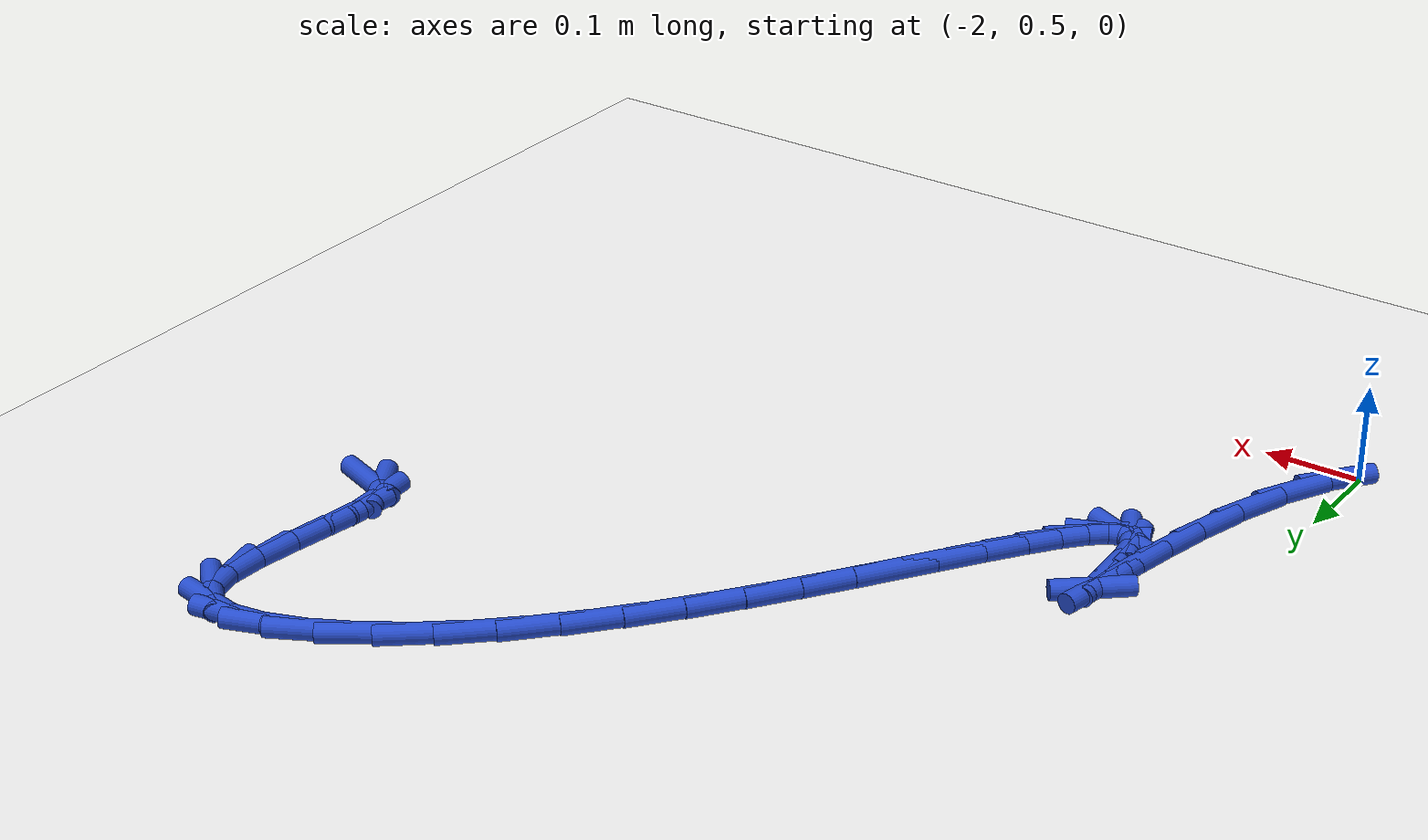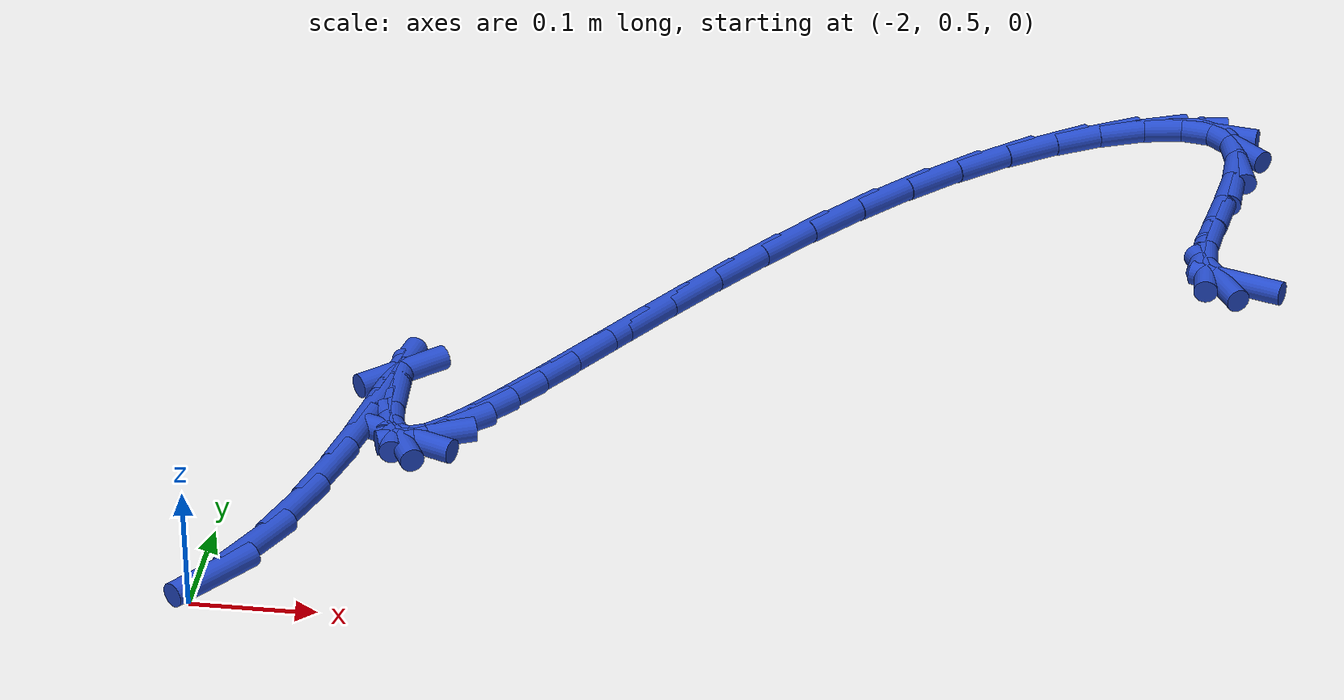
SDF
<sdf version="1.6">
 <world name="default">
  <model name="ground_plane">
   <static>1</static>
   <link name="link">
    <collision name="collision">
     <geometry><plane><normal>0 0 1</normal><size>100 100</size></plane></geometry>
     <surface><friction><ode><mu>100</mu><mu2>50</mu2></ode></friction></surface>
    </collision>
    <visual name="visual">
     <cast_shadows>0</cast_shadows>
     <geometry><plane><normal>0 0 1</normal><size>100 100</size></plane></geometry>
     <material>
      <script><uri>file://media/materials/scripts/gazebo.material</uri><name>Gazebo/WhiteGlow</name></script>
     </material>
    </visual>
   </link>
  </model>
  <model name="line">
   <link name="link_65">
    <pose>-1.2316347578829032 1.0549786805794126 0.01 0 1.57 -0.3231583201913348</pose>
    <collision name="collision">
     <geometry><cylinder><radius>0.01</radius><length>0.08</length></cylinder></geometry>
    </collision>
    <visual name="visual">
     <material>
      <script><name>Gazebo/Blue</name><uri>file://media/materials/scripts/gazebo.material</uri></script>
     </material>
     <geometry><cylinder><radius>0.01</radius><length>0.08</length></cylinder></geometry>
    </visual>
   </link>
   <link name="link_66">
    <pose>-1.2489816796954558 1.0607881343881533 0.01 0 1.57 -1.0448259775013014</pose>
    <collision name="collision">
     <geometry><cylinder><radius>0.01</radius><length>0.08</length></cylinder></geometry>
    </collision>
    <visual name="visual">
     <material>
      <script><name>Gazebo/Blue</name><uri>file://media/materials/scripts/gazebo.material</uri></script>
     </material>
     <geometry><cylinder><radius>0.01</radius><length>0.08</length></cylinder></geometry>
    </visual>
   </link>
   <link name="link_67">
    <pose>-1.258559127793637 1.0772862781112325 0.01 0 1.57 -1.5194724999171398</pose>
    <collision name="collision">
     <geometry><cylinder><radius>0.01</radius><length>0.08</length></cylinder></geometry>
    </collision>
    <visual name="visual">
     <material>
      <script><name>Gazebo/Blue</name><uri>file://media/materials/scripts/gazebo.material</uri></script>
     </material>
     <geometry><cylinder><radius>0.01</radius><length>0.08</length></cylinder></geometry>
    </visual>
   </link>
   <link name="link_68">
    <pose>-1.2599828690397379 1.1050022728854256 0.01 0 1.57 1.453924606464601</pose>
    <collision name="collision">
     <geometry><cylinder><radius>0.01</radius><length>0.08</length></cylinder></geometry>
    </collision>
    <visual name="visual">
     <material>
      <script><name>Gazebo/Blue</name><uri>file://media/materials/scripts/gazebo.material</uri></script>
     </material>
     <geometry><cylinder><radius>0.01</radius><length>0.08</length></cylinder></geometry>
    </visual>
   </link>
   <link name="link_69">
    <pose>-1.25577186941147 1.1408690288047874 0.01 0 1.57 1.4093247199140935</pose>
    <collision name="collision">
     <geometry><cylinder><radius>0.01</radius><length>0.08</length></cylinder></geometry>
    </collision>
    <visual name="visual">
     <material>
      <script><name>Gazebo/Blue</name><uri>file://media/materials/scripts/gazebo.material</uri></script>
     </material>
     <geometry><cylinder><radius>0.01</radius><length>0.08</length></cylinder></geometry>
    </visual>
   </link>
   <link name="link_70">
    <pose>-1.2492673810902013 1.1808008735307702 0.01 0 1.57 1.4349184412844749</pose>
    <collision name="collision">
     <geometry><cylinder><radius>0.01</radius><length>0.08</length></cylinder></geometry>
    </collision>
    <visual name="visual">
     <material>
      <script><name>Gazebo/Blue</name><uri>file://media/materials/scripts/gazebo.material</uri></script>
     </material>
     <geometry><cylinder><radius>0.01</radius><length>0.08</length></cylinder></geometry>
    </visual>
   </link>
   <link name="link_71">
    <pose>-1.2438107089595731 1.2207120694414633 0.01 0 1.57 1.5409893010086426</pose>
    <collision name="collision">
     <geometry><cylinder><radius>0.01</radius><length>0.08</length></cylinder></geometry>
    </collision>
    <visual name="visual">
     <material>
      <script><name>Gazebo/Blue</name><uri>file://media/materials/scripts/gazebo.material</uri></script>
     </material>
     <geometry><cylinder><radius>0.01</radius><length>0.08</length></cylinder></geometry>
    </visual>
   </link>
   <link name="link_72">
    <pose>-1.242743157903225 1.2565168789149554 0.01 0 1.57 -1.3340247727599028</pose>
    <collision name="collision">
     <geometry><cylinder><radius>0.01</radius><length>0.08</length></cylinder></geometry>
    </collision>
    <visual name="visual">
     <material>
      <script><name>Gazebo/Blue</name><uri>file://media/materials/scripts/gazebo.material</uri></script>
     </material>
     <geometry><cylinder><radius>0.01</radius><length>0.08</length></cylinder></geometry>
    </visual>
   </link>
   <link name="link_73">
    <pose>-1.2494060328047978 1.2841295643293358 0.01 0 1.57 -0.7539144972013343</pose>
    <collision name="collision">
     <geometry><cylinder><radius>0.01</radius><length>0.08</length></cylinder></geometry>
    </collision>
    <visual name="visual">
     <material>
      <script><name>Gazebo/Blue</name><uri>file://media/materials/scripts/gazebo.material</uri></script>
     </material>
     <geometry><cylinder><radius>0.01</radius><length>0.08</length></cylinder></geometry>
    </visual>
   </link>
   <link name="link_74">
    <pose>-1.266452386490176 1.3001349830888704 0.01 0 1.57 -0.16989779764663188</pose>
    <collision name="collision">
     <geometry><cylinder><radius>0.01</radius><length>0.08</length></cylinder></geometry>
    </collision>
    <visual name="visual">
     <material>
      <script><name>Gazebo/Blue</name><uri>file://media/materials/scripts/gazebo.material</uri></script>
     </material>
     <geometry><cylinder><radius>0.01</radius><length>0.08</length></cylinder></geometry>
    </visual>
   </link>
   <link name="link_75">
    <pose>-1.2928894302079432 1.304670300506552 0.01 0 1.57 0.16573971584571326</pose>
    <collision name="collision">
     <geometry><cylinder><radius>0.01</radius><length>0.08</length></cylinder></geometry>
    </collision>
    <visual name="visual">
     <material>
      <script><name>Gazebo/Blue</name><uri>file://media/materials/scripts/gazebo.material</uri></script>
     </material>
     <geometry><cylinder><radius>0.01</radius><length>0.08</length></cylinder></geometry>
    </visual>
   </link>
   <link name="link_76">
    <pose>-1.3265217155345135 1.299044487464639 0.01 0 1.57 0.3585549631792689</pose>
    <collision name="collision">
     <geometry><cylinder><radius>0.01</radius><length>0.08</length></cylinder></geometry>
    </collision>
    <visual name="visual">
     <material>
      <script><name>Gazebo/Blue</name><uri>file://media/materials/scripts/gazebo.material</uri></script>
     </material>
     <geometry><cylinder><radius>0.01</radius><length>0.08</length></cylinder></geometry>
    </visual>
   </link>
   <link name="link_77">
    <pose>-1.3651530477376101 1.2845672420076182 0.01 0 1.57 0.4884670050356795</pose>
    <collision name="collision">
     <geometry><cylinder><radius>0.01</radius><length>0.08</length></cylinder></geometry>
    </collision>
    <visual name="visual">
     <material>
      <script><name>Gazebo/Blue</name><uri>file://media/materials/scripts/gazebo.material</uri></script>
     </material>
     <geometry><cylinder><radius>0.01</radius><length>0.08</length></cylinder></geometry>
    </visual>
   </link>
   <link name="link_78">
    <pose>-1.4065872320849544 1.262548262179974 0.01 0 1.57 0.5916736825576479</pose>
    <collision name="collision">
     <geometry><cylinder><radius>0.01</radius><length>0.08</length></cylinder></geometry>
    </collision>
    <visual name="visual">
     <material>
      <script><name>Gazebo/Blue</name><uri>file://media/materials/scripts/gazebo.material</uri></script>
     </material>
     <geometry><cylinder><radius>0.01</radius><length>0.08</length></cylinder></geometry>
    </visual>
   </link>
   <link name="link_79">
    <pose>-1.4486287073273438 1.2342971320164955 0.01 0 1.57 0.6822285112587788</pose>
    <collision name="collision">
     <geometry><cylinder><radius>0.01</radius><length>0.08</length></cylinder></geometry>
    </collision>
    <visual name="visual">
     <material>
      <script><name>Gazebo/Blue</name><uri>file://media/materials/scripts/gazebo.material</uri></script>
     </material>
     <geometry><cylinder><radius>0.01</radius><length>0.08</length></cylinder></geometry>
    </visual>
   </link>
   <link name="link_80">
    <pose>-1.4895743051197081 1.2010348182428865 0.01 0 1.57 0.7565078281490967</pose>
    <collision name="collision">
     <geometry><cylinder><radius>0.01</radius><length>0.08</length></cylinder></geometry>
    </collision>
    <visual name="visual">
     <material>
      <script><name>Gazebo/Blue</name><uri>file://media/materials/scripts/gazebo.material</uri></script>
     </material>
     <geometry><cylinder><radius>0.01</radius><length>0.08</length></cylinder></geometry>
    </visual>
   </link>
   <link name="link_81">
    <pose>-1.5290938964789877 1.1637351779037266 0.01 0 1.57 0.816061124799054</pose>
    <collision name="collision">
     <geometry><cylinder><radius>0.01</radius><length>0.08</length></cylinder></geometry>
    </collision>
    <visual name="visual">
     <material>
      <script><name>Gazebo/Blue</name><uri>file://media/materials/scripts/gazebo.material</uri></script>
     </material>
     <geometry><cylinder><radius>0.01</radius><length>0.08</length></cylinder></geometry>
    </visual>
   </link>
   <link name="link_82">
    <pose>-1.5670948041985655 1.1233293331924448 0.01 0 1.57 0.863639317143502</pose>
    <collision name="collision">
     <geometry><cylinder><radius>0.01</radius><length>0.08</length></cylinder></geometry>
    </collision>
    <visual name="visual">
     <material>
      <script><name>Gazebo/Blue</name><uri>file://media/materials/scripts/gazebo.material</uri></script>
     </material>
     <geometry><cylinder><radius>0.01</radius><length>0.08</length></cylinder></geometry>
    </visual>
   </link>
   <link name="link_83">
    <pose>-1.6034843510718224 1.080748406302469 0.01 0 1.57 0.9012863477476284</pose>
    <collision name="collision">
     <geometry><cylinder><radius>0.01</radius><length>0.08</length></cylinder></geometry>
    </collision>
    <visual name="visual">
     <material>
      <script><name>Gazebo/Blue</name><uri>file://media/materials/scripts/gazebo.material</uri></script>
     </material>
     <geometry><cylinder><radius>0.01</radius><length>0.08</length></cylinder></geometry>
    </visual>
   </link>
   <link name="link_84">
    <pose>-1.638169859892142 1.0369235194272286 0.01 0 1.57 0.9304127438363866</pose>
    <collision name="collision">
     <geometry><cylinder><radius>0.01</radius><length>0.08</length></cylinder></geometry>
    </collision>
    <visual name="visual">
     <material>
      <script><name>Gazebo/Blue</name><uri>file://media/materials/scripts/gazebo.material</uri></script>
     </material>
     <geometry><cylinder><radius>0.01</radius><length>0.08</length></cylinder></geometry>
    </visual>
   </link>
   <link name="link_85">
    <pose>-1.671058653452905 0.9927857947601519 0.01 0 1.57 0.9518552612427992</pose>
    <collision name="collision">
     <geometry><cylinder><radius>0.01</radius><length>0.08</length></cylinder></geometry>
    </collision>
    <visual name="visual">
     <material>
      <script><name>Gazebo/Blue</name><uri>file://media/materials/scripts/gazebo.material</uri></script>
     </material>
     <geometry><cylinder><radius>0.01</radius><length>0.08</length></cylinder></geometry>
    </visual>
   </link>
   <link name="link_86">
    <pose>-1.702058054547495 0.9492663544946681 0.01 0 1.57 0.9658776120048262</pose>
    <collision name="collision">
     <geometry><cylinder><radius>0.01</radius><length>0.08</length></cylinder></geometry>
    </collision>
    <visual name="visual">
     <material>
      <script><name>Gazebo/Blue</name><uri>file://media/materials/scripts/gazebo.material</uri></script>
     </material>
     <geometry><cylinder><radius>0.01</radius><length>0.08</length></cylinder></geometry>
    </visual>
   </link>
   <link name="link_87">
    <pose>-1.731075385969294 0.9072963208242057 0.01 0 1.57 0.9720676805861276</pose>
    <collision name="collision">
     <geometry><cylinder><radius>0.01</radius><length>0.08</length></cylinder></geometry>
    </collision>
    <visual name="visual">
     <material>
      <script><name>Gazebo/Blue</name><uri>file://media/materials/scripts/gazebo.material</uri></script>
     </material>
     <geometry><cylinder><radius>0.01</radius><length>0.08</length></cylinder></geometry>
    </visual>
   </link>
   <link name="link_88">
    <pose>-1.7580179705116834 0.8678068159421941 0.01 0 1.57 0.9690430360633145</pose>
    <collision name="collision">
     <geometry><cylinder><radius>0.01</radius><length>0.08</length></cylinder></geometry>
    </collision>
    <visual name="visual">
     <material>
      <script><name>Gazebo/Blue</name><uri>file://media/materials/scripts/gazebo.material</uri></script>
     </material>
     <geometry><cylinder><radius>0.01</radius><length>0.08</length></cylinder></geometry>
    </visual>
   </link>
   <link name="link_89">
    <pose>-1.7827931309680467 0.8317289620420606 0.01 0 1.57 0.9537434919877852</pose>
    <collision name="collision">
     <geometry><cylinder><radius>0.01</radius><length>0.08</length></cylinder></geometry>
    </collision>
    <visual name="visual">
     <material>
      <script><name>Gazebo/Blue</name><uri>file://media/materials/scripts/gazebo.material</uri></script>
     </material>
     <geometry><cylinder><radius>0.01</radius><length>0.08</length></cylinder></geometry>
    </visual>
   </link>
   <link name="link_90">
    <pose>-1.8053081901317651 0.7999938813172349 0.01 0 1.57 0.9196866680063148</pose>
    <collision name="collision">
     <geometry><cylinder><radius>0.01</radius><length>0.08</length></cylinder></geometry>
    </collision>
    <visual name="visual">
     <material>
      <script><name>Gazebo/Blue</name><uri>file://media/materials/scripts/gazebo.material</uri></script>
     </material>
     <geometry><cylinder><radius>0.01</radius><length>0.08</length></cylinder></geometry>
    </visual>
   </link>
   <link name="link_91">
    <pose>-1.8254704707962213 0.7735326959611453 0.01 0 1.57 0.8521710864222295</pose>
    <collision name="collision">
     <geometry><cylinder><radius>0.01</radius><length>0.08</length></cylinder></geometry>
    </collision>
    <visual name="visual">
     <material>
      <script><name>Gazebo/Blue</name><uri>file://media/materials/scripts/gazebo.material</uri></script>
     </material>
     <geometry><cylinder><radius>0.01</radius><length>0.08</length></cylinder></geometry>
    </visual>
   </link>
   <link name="link_92">
    <pose>-1.8431872957547975 0.7532765281672211 0.01 0 1.57 0.7127784880198587</pose>
    <collision name="collision">
     <geometry><cylinder><radius>0.01</radius><length>0.08</length></cylinder></geometry>
    </collision>
    <visual name="visual">
     <material>
      <script><name>Gazebo/Blue</name><uri>file://media/materials/scripts/gazebo.material</uri></script>
     </material>
     <geometry><cylinder><radius>0.01</radius><length>0.08</length></cylinder></geometry>
    </visual>
   </link>
   <link name="link_93">
    <pose>-1.8583659878008758 0.7401565001288908 0.01 0 1.57 0.3828135557608687</pose>
    <collision name="collision">
     <geometry><cylinder><radius>0.01</radius><length>0.08</length></cylinder></geometry>
    </collision>
    <visual name="visual">
     <material>
      <script><name>Gazebo/Blue</name><uri>file://media/materials/scripts/gazebo.material</uri></script>
     </material>
     <geometry><cylinder><radius>0.01</radius><length>0.08</length></cylinder></geometry>
    </visual>
   </link>
   <link name="link_94">
    <pose>-1.8709138697278385 0.735103734039583 0.01 0 1.57 -0.3818973006080374</pose>
    <collision name="collision">
     <geometry><cylinder><radius>0.01</radius><length>0.08</length></cylinder></geometry>
    </collision>
    <visual name="visual">
     <material>
      <script><name>Gazebo/Blue</name><uri>file://media/materials/scripts/gazebo.material</uri></script>
     </material>
     <geometry><cylinder><radius>0.01</radius><length>0.08</length></cylinder></geometry>
    </visual>
   </link>
   <link name="link_95">
    <pose>-1.880738264329068 0.7390493520927265 0.01 0 1.57 -1.1030825165542038</pose>
    <collision name="collision">
     <geometry><cylinder><radius>0.01</radius><length>0.08</length></cylinder></geometry>
    </collision>
    <visual name="visual">
     <material>
      <script><name>Gazebo/Blue</name><uri>file://media/materials/scripts/gazebo.material</uri></script>
     </material>
     <geometry><cylinder><radius>0.01</radius><length>0.08</length></cylinder></geometry>
    </visual>
   </link>
   <link name="link_96">
    <pose>-1.8877464943979463 0.7529244764817502 0.01 0 1.57 -1.406561814546199</pose>
    <collision name="collision">
     <geometry><cylinder><radius>0.01</radius><length>0.08</length></cylinder></geometry>
    </collision>
    <visual name="visual">
     <material>
      <script><name>Gazebo/Blue</name><uri>file://media/materials/scripts/gazebo.material</uri></script>
     </material>
     <geometry><cylinder><radius>0.01</radius><length>0.08</length></cylinder></geometry>
    </visual>
   </link>
   <link name="link_97">
    <pose>-1.8918458827278555 0.7776602294000825 0.01 0 1.57 -1.5322169868185775</pose>
    <collision name="collision">
     <geometry><cylinder><radius>0.01</radius><length>0.08</length></cylinder></geometry>
    </collision>
    <visual name="visual">
     <material>
      <script><name>Gazebo/Blue</name><uri>file://media/materials/scripts/gazebo.material</uri></script>
     </material>
     <geometry><cylinder><radius>0.01</radius><length>0.08</length></cylinder></geometry>
    </visual>
   </link>
   <link name="link_98">
    <pose>-1.8931709498636766 0.8119897352099404 0.01 0 1.57 -1.5200494851656197</pose>
    <collision name="collision">
     <geometry><cylinder><radius>0.01</radius><length>0.08</length></cylinder></geometry>
    </collision>
    <visual name="visual">
     <material>
      <script><name>Gazebo/Blue</name><uri>file://media/materials/scripts/gazebo.material</uri></script>
     </material>
     <geometry><cylinder><radius>0.01</radius><length>0.08</length></cylinder></geometry>
    </visual>
   </link>
   <link name="link_99">
    <pose>-1.8942179216910473 0.8326032927082713 0.01 0 1.57 0.7110828354650188</pose>
    <collision name="collision">
     <geometry><cylinder><radius>0.01</radius><length>0.08</length></cylinder></geometry>
    </collision>
    <visual name="visual">
     <material>
      <script><name>Gazebo/Blue</name><uri>file://media/materials/scripts/gazebo.material</uri></script>
     </material>
     <geometry><cylinder><radius>0.01</radius><length>0.08</length></cylinder></geometry>
    </visual>
   </link>
   <link name="link_100">
    <pose>-1.8965517313938194 0.8305929181237821 0.01 0 1.57 1.375292312299927</pose>
    <collision name="collision">
     <geometry><cylinder><radius>0.01</radius><length>0.08</length></cylinder></geometry>
    </collision>
    <visual name="visual">
     <material>
      <script><name>Gazebo/Blue</name><uri>file://media/materials/scripts/gazebo.material</uri></script>
     </material>
     <geometry><cylinder><radius>0.01</radius><length>0.08</length></cylinder></geometry>
    </visual>
   </link>
   <link name="link_101">
    <pose>-1.9006252859255406 0.8100228942452196 0.01 0 1.57 1.393858171075122</pose>
    <collision name="collision">
     <geometry><cylinder><radius>0.01</radius><length>0.08</length></cylinder></geometry>
    </collision>
    <visual name="visual">
     <material>
      <script><name>Gazebo/Blue</name><uri>file://media/materials/scripts/gazebo.material</uri></script>
     </material>
     <geometry><cylinder><radius>0.01</radius><length>0.08</length></cylinder></geometry>
    </visual>
   </link>
   <link name="link_102">
    <pose>-1.9068879881903227 0.7749981720752331 0.01 0 1.57 1.377083117403481</pose>
    <collision name="collision">
     <geometry><cylinder><radius>0.01</radius><length>0.08</length></cylinder></geometry>
    </collision>
    <visual name="visual">
     <material>
      <script><name>Gazebo/Blue</name><uri>file://media/materials/scripts/gazebo.material</uri></script>
     </material>
     <geometry><cylinder><radius>0.01</radius><length>0.08</length></cylinder></geometry>
    </visual>
   </link>
   <link name="link_103">
    <pose>-1.9157892410922785 0.7296237026164745 0.01 0 1.57 1.3425804204030285</pose>
    <collision name="collision">
     <geometry><cylinder><radius>0.01</radius><length>0.08</length></cylinder></geometry>
    </collision>
    <visual name="visual">
     <material>
      <script><name>Gazebo/Blue</name><uri>file://media/materials/scripts/gazebo.material</uri></script>
     </material>
     <geometry><cylinder><radius>0.01</radius><length>0.08</length></cylinder></geometry>
    </visual>
   </link>
   <link name="link_104">
    <pose>-1.9277784475355202 0.6780044368715936 0.01 0 1.57 1.2896301733422966</pose>
    <collision name="collision">
     <geometry><cylinder><radius>0.01</radius><length>0.08</length></cylinder></geometry>
    </collision>
    <visual name="visual">
     <material>
      <script><name>Gazebo/Blue</name><uri>file://media/materials/scripts/gazebo.material</uri></script>
     </material>
     <geometry><cylinder><radius>0.01</radius><length>0.08</length></cylinder></geometry>
    </visual>
   </link>
   <link name="link_105">
    <pose>-1.9433050104241594 0.6242453258432419 0.01 0 1.57 1.2104934644030874</pose>
    <collision name="collision">
     <geometry><cylinder><radius>0.01</radius><length>0.08</length></cylinder></geometry>
    </collision>
    <visual name="visual">
     <material>
      <script><name>Gazebo/Blue</name><uri>file://media/materials/scripts/gazebo.material</uri></script>
     </material>
     <geometry><cylinder><radius>0.01</radius><length>0.08</length></cylinder></geometry>
    </visual>
   </link>
   <link name="link_106">
    <pose>-1.9628183326623083 0.5724513205340682 0.01 0 1.57 1.088319006881412</pose>
    <collision name="collision">
     <geometry><cylinder><radius>0.01</radius><length>0.08</length></cylinder></geometry>
    </collision>
    <visual name="visual">
     <material>
      <script><name>Gazebo/Blue</name><uri>file://media/materials/scripts/gazebo.material</uri></script>
     </material>
     <geometry><cylinder><radius>0.01</radius><length>0.08</length></cylinder></geometry>
    </visual>
   </link>
   <link name="link_107">
    <pose>-1.9867675082140308 0.5267261652414544 0.01 0 1.57 0.9104327772525554</pose>
    <collision name="collision">
     <geometry><cylinder><radius>0.01</radius><length>0.08</length></cylinder></geometry>
    </collision>
    <visual name="visual">
     <material>
      <script><name>Gazebo/Blue</name><uri>file://media/materials/scripts/gazebo.material</uri></script>
     </material>
     <geometry><cylinder><radius>0.01</radius><length>0.08</length></cylinder></geometry>
    </visual>
   </link>
  </model>
 </world>
</sdf>
